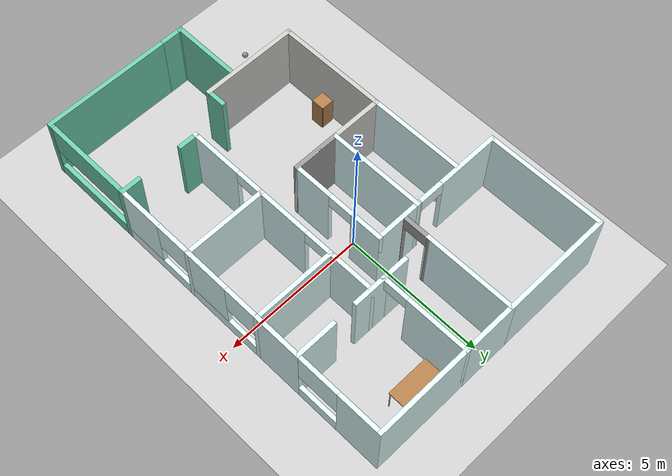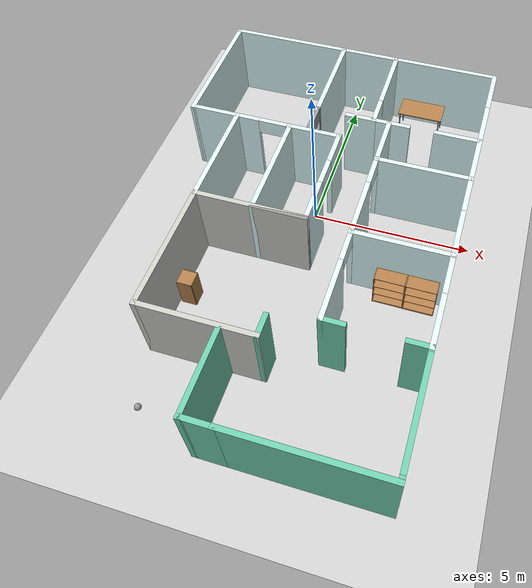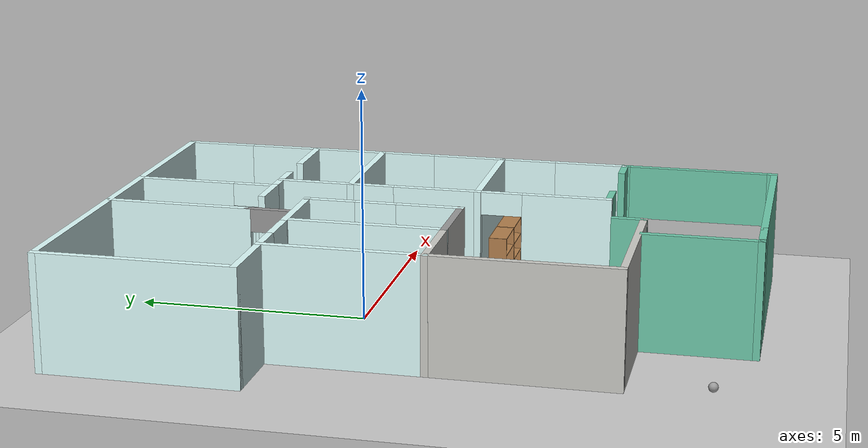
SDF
<sdf version="1.6">
 <world name="default">
  <light name="sun" type="directional">
   <pose>0 0 10 0 -0 0</pose>
   <diffuse>0.8 0.8 0.8 1</diffuse>
   <specular>0.2 0.2 0.2 1</specular>
   <attenuation>
    <range>1000</range>
    <constant>0.9</constant>
    <linear>0.01</linear>
    <quadratic>0.001</quadratic>
   </attenuation>
   <direction>-0.5 0.1 -0.9</direction>
  </light>
  <model name="ground_plane">
   <static>1</static>
   <link name="link">
    <collision name="collision">
     <geometry><plane><normal>0 0 1</normal><size>100 100</size></plane></geometry>
     <surface><friction><ode><mu>100</mu><mu2>50</mu2></ode></friction></surface>
    </collision>
    <visual name="visual">
     <cast_shadows>0</cast_shadows>
     <geometry><plane><normal>0 0 1</normal><size>100 100</size></plane></geometry>
     <material>
      <script><uri>file://media/materials/scripts/gazebo.material</uri><name>Gazebo/Grey</name></script>
     </material>
    </visual>
   </link>
  </model>
  <gravity>0 0 -9.8</gravity>
  <magnetic_field>6e-06 2.3e-05 -4.2e-05</magnetic_field>
  <atmosphere type="adiabatic"/>
  <physics name="default_physics" default="0" type="ode">
   <max_step_size>0.001</max_step_size>
   <real_time_factor>1</real_time_factor>
   <real_time_update_rate>1000</real_time_update_rate>
  </physics>
  <scene><ambient>0.4 0.4 0.4 1</ambient><background>0.7 0.7 0.7 1</background><shadows>1</shadows></scene>
  <spherical_coordinates>
   <surface_model>EARTH_WGS84</surface_model>
   <latitude_deg>0</latitude_deg>
   <longitude_deg>0</longitude_deg>
   <elevation>0</elevation>
   <heading_deg>0</heading_deg>
  </spherical_coordinates>
  <model name="Building">
   <pose>0.06239 -1.44031 0 0 -0 0</pose>
   <link name="Wall_1">
    <collision name="Wall_1_Collision">
     <geometry><box><size>3.5 0.15 2.5</size></box></geometry>
     <pose>0 0 1.25 0 -0 0</pose>
    </collision>
    <visual name="Wall_1_Visual">
     <pose>0 0 1.25 0 -0 0</pose>
     <geometry><box><size>3.5 0.15 2.5</size></box></geometry>
     <material>
      <script><uri>file://media/materials/scripts/gazebo.material</uri><name>Gazebo/Grey</name></script>
      <ambient>0.878431 1 0.996078 1</ambient>
     </material>
     <meta><layer>0</layer></meta>
    </visual>
    <pose>2.85 6.875 0 0 -0 0</pose>
   </link>
   <link name="Wall_10">
    <pose>-2.1 2.775 0 0 -0 0</pose>
    <visual name="Wall_10_Visual_0">
     <pose>-1.3425 0 1.25 0 -0 0</pose>
     <geometry><box><size>2.315 0.15 2.5</size></box></geometry>
     <material>
      <script><uri>file://media/materials/scripts/gazebo.material</uri><name>Gazebo/Grey</name></script>
      <ambient>0.878431 1 0.996078 1</ambient>
     </material>
     <meta><layer>0</layer></meta>
    </visual>
    <collision name="Wall_10_Collision_0">
     <geometry><box><size>2.315 0.15 2.5</size></box></geometry>
     <pose>-1.3425 0 1.25 0 -0 0</pose>
    </collision>
    <visual name="Wall_10_Visual_1">
     <pose>1.6075 0 1.25 0 -0 0</pose>
     <geometry><box><size>1.785 0.15 2.5</size></box></geometry>
     <material>
      <script><uri>file://media/materials/scripts/gazebo.material</uri><name>Gazebo/Grey</name></script>
      <ambient>0.878431 1 0.996078 1</ambient>
     </material>
     <meta><layer>0</layer></meta>
    </visual>
    <collision name="Wall_10_Collision_1">
     <geometry><box><size>1.785 0.15 2.5</size></box></geometry>
     <pose>1.6075 0 1.25 0 -0 0</pose>
    </collision>
    <visual name="Wall_10_Visual_2">
     <pose>0.265 0 2.25 0 -0 0</pose>
     <geometry><box><size>0.9 0.15 0.5</size></box></geometry>
     <material>
      <script><uri>file://media/materials/scripts/gazebo.material</uri><name>Gazebo/Grey</name></script>
      <ambient>0.878431 1 0.996078 1</ambient>
     </material>
     <meta><layer>0</layer></meta>
    </visual>
    <collision name="Wall_10_Collision_2">
     <geometry><box><size>0.9 0.15 0.5</size></box></geometry>
     <pose>0.265 0 2.25 0 -0 0</pose>
    </collision>
   </link>
   <link name="Wall_12">
    <collision name="Wall_12_Collision">
     <geometry><box><size>1.75 0.15 2.5</size></box></geometry>
     <pose>0 0 1.25 0 -0 0</pose>
    </collision>
    <visual name="Wall_12_Visual">
     <pose>0 0 1.25 0 -0 0</pose>
     <geometry><box><size>1.75 0.15 2.5</size></box></geometry>
     <material>
      <script><uri>file://media/materials/scripts/gazebo.material</uri><name>Gazebo/Grey</name></script>
      <ambient>0.878431 1 0.996078 1</ambient>
     </material>
     <meta><layer>0</layer></meta>
    </visual>
    <pose>4.525 2.975 0 0 0 -1.5708</pose>
   </link>
   <link name="Wall_16">
    <collision name="Wall_16_Collision">
     <geometry><box><size>3 0.15 2.5</size></box></geometry>
     <pose>0 0 1.25 0 -0 0</pose>
    </collision>
    <visual name="Wall_16_Visual">
     <pose>0 0 1.25 0 -0 0</pose>
     <geometry><box><size>3 0.15 2.5</size></box></geometry>
     <material>
      <script><uri>file://media/materials/scripts/gazebo.material</uri><name>Gazebo/Grey</name></script>
      <ambient>0.878431 1 0.996078 1</ambient>
     </material>
     <meta><layer>0</layer></meta>
    </visual>
    <pose>3.1 2.175 0 0 -0 3.14159</pose>
   </link>
   <link name="Wall_17">
    <collision name="Wall_17_Collision">
     <geometry><box><size>1.75 0.15 2.5</size></box></geometry>
     <pose>0 0 1.25 0 -0 0</pose>
    </collision>
    <visual name="Wall_17_Visual">
     <pose>0 0 1.25 0 -0 0</pose>
     <geometry><box><size>1.75 0.15 2.5</size></box></geometry>
     <material>
      <script><uri>file://media/materials/scripts/gazebo.material</uri><name>Gazebo/Grey</name></script>
      <ambient>0.878431 1 0.996078 1</ambient>
     </material>
     <meta><layer>0</layer></meta>
    </visual>
    <pose>1.675 2.975 0 0 -0 1.5708</pose>
   </link>
   <link name="Wall_19">
    <pose>4.525 0.75 0 0 0 -1.5708</pose>
    <visual name="Wall_19_Visual_0">
     <pose>-1.4225 0 1.25 0 -0 0</pose>
     <geometry><box><size>0.155 0.15 2.5</size></box></geometry>
     <material>
      <script><uri>file://media/materials/scripts/gazebo.material</uri><name>Gazebo/Grey</name></script>
      <ambient>0.878431 1 0.996078 1</ambient>
     </material>
     <meta><layer>0</layer></meta>
    </visual>
    <collision name="Wall_19_Collision_0">
     <geometry><box><size>0.155 0.15 2.5</size></box></geometry>
     <pose>-1.4225 0 1.25 0 -0 0</pose>
    </collision>
    <visual name="Wall_19_Visual_1">
     <pose>0.0775 0 0.25 0 -0 0</pose>
     <geometry><box><size>2.845 0.15 0.5</size></box></geometry>
     <material>
      <script><uri>file://media/materials/scripts/gazebo.material</uri><name>Gazebo/Grey</name></script>
      <ambient>0.878431 1 0.996078 1</ambient>
     </material>
     <meta><layer>0</layer></meta>
    </visual>
    <collision name="Wall_19_Collision_1">
     <geometry><box><size>2.845 0.15 0.5</size></box></geometry>
     <pose>0.0775 0 0.25 0 -0 0</pose>
    </collision>
    <visual name="Wall_19_Visual_2">
     <pose>0.6625 0 1.5 0 -0 0</pose>
     <geometry><box><size>1.675 0.15 2</size></box></geometry>
     <material>
      <script><uri>file://media/materials/scripts/gazebo.material</uri><name>Gazebo/Grey</name></script>
      <ambient>0.878431 1 0.996078 1</ambient>
     </material>
     <meta><layer>0</layer></meta>
    </visual>
    <collision name="Wall_19_Collision_2">
     <geometry><box><size>1.675 0.15 2</size></box></geometry>
     <pose>0.6625 0 1.5 0 -0 0</pose>
    </collision>
    <visual name="Wall_19_Visual_3">
     <pose>-0.76 0 1.9 0 -0 0</pose>
     <geometry><box><size>1.17 0.15 1.2</size></box></geometry>
     <material>
      <script><uri>file://media/materials/scripts/gazebo.material</uri><name>Gazebo/Grey</name></script>
      <ambient>0.878431 1 0.996078 1</ambient>
     </material>
     <meta><layer>0</layer></meta>
    </visual>
    <collision name="Wall_19_Collision_3">
     <geometry><box><size>1.17 0.15 1.2</size></box></geometry>
     <pose>-0.76 0 1.9 0 -0 0</pose>
    </collision>
   </link>
   <link name="Wall_2">
    <pose>4.525 5.325 0 0 0 -1.5708</pose>
    <visual name="Wall_2_Visual_0">
     <pose>-0.8175 0 1.25 0 -0 0</pose>
     <geometry><box><size>1.615 0.15 2.5</size></box></geometry>
     <material>
      <script><uri>file://media/materials/scripts/gazebo.material</uri><name>Gazebo/Grey</name></script>
      <ambient>0.878431 1 0.996078 1</ambient>
     </material>
     <meta><layer>0</layer></meta>
    </visual>
    <collision name="Wall_2_Collision_0">
     <geometry><box><size>1.615 0.15 2.5</size></box></geometry>
     <pose>-0.8175 0 1.25 0 -0 0</pose>
    </collision>
    <visual name="Wall_2_Visual_1">
     <pose>0.8075 0 0.25 0 -0 0</pose>
     <geometry><box><size>1.635 0.15 0.5</size></box></geometry>
     <material>
      <script><uri>file://media/materials/scripts/gazebo.material</uri><name>Gazebo/Grey</name></script>
      <ambient>0.878431 1 0.996078 1</ambient>
     </material>
     <meta><layer>0</layer></meta>
    </visual>
    <collision name="Wall_2_Collision_1">
     <geometry><box><size>1.635 0.15 0.5</size></box></geometry>
     <pose>0.8075 0 0.25 0 -0 0</pose>
    </collision>
    <visual name="Wall_2_Visual_2">
     <pose>1.5475 0 1.5 0 -0 0</pose>
     <geometry><box><size>0.155 0.15 2</size></box></geometry>
     <material>
      <script><uri>file://media/materials/scripts/gazebo.material</uri><name>Gazebo/Grey</name></script>
      <ambient>0.878431 1 0.996078 1</ambient>
     </material>
     <meta><layer>0</layer></meta>
    </visual>
    <collision name="Wall_2_Collision_2">
     <geometry><box><size>0.155 0.15 2</size></box></geometry>
     <pose>1.5475 0 1.5 0 -0 0</pose>
    </collision>
    <visual name="Wall_2_Visual_3">
     <pose>0.73 0 1.9 0 -0 0</pose>
     <geometry><box><size>1.48 0.15 1.2</size></box></geometry>
     <material>
      <script><uri>file://media/materials/scripts/gazebo.material</uri><name>Gazebo/Grey</name></script>
      <ambient>0.878431 1 0.996078 1</ambient>
     </material>
     <meta><layer>0</layer></meta>
    </visual>
    <collision name="Wall_2_Collision_3">
     <geometry><box><size>1.48 0.15 1.2</size></box></geometry>
     <pose>0.73 0 1.9 0 -0 0</pose>
    </collision>
   </link>
   <link name="Wall_20">
    <collision name="Wall_20_Collision">
     <geometry><box><size>3 0.15 2.5</size></box></geometry>
     <pose>0 0 1.25 0 -0 0</pose>
    </collision>
    <visual name="Wall_20_Visual">
     <pose>0 0 1.25 0 -0 0</pose>
     <geometry><box><size>3 0.15 2.5</size></box></geometry>
     <material>
      <script><uri>file://media/materials/scripts/gazebo.material</uri><name>Gazebo/Grey</name></script>
      <ambient>0.878431 1 0.996078 1</ambient>
     </material>
     <meta><layer>0</layer></meta>
    </visual>
    <pose>3.1 -0.675 0 0 -0 3.14159</pose>
   </link>
   <link name="Wall_21">
    <pose>1.675 0.75 0 0 -0 1.5708</pose>
    <visual name="Wall_21_Visual_0">
     <pose>-0.5275 0 1.25 0 -0 0</pose>
     <geometry><box><size>1.945 0.15 2.5</size></box></geometry>
     <material>
      <script><uri>file://media/materials/scripts/gazebo.material</uri><name>Gazebo/Grey</name></script>
      <ambient>0.878431 1 0.996078 1</ambient>
     </material>
     <meta><layer>0</layer></meta>
    </visual>
    <collision name="Wall_21_Collision_0">
     <geometry><box><size>1.945 0.15 2.5</size></box></geometry>
     <pose>-0.5275 0 1.25 0 -0 0</pose>
    </collision>
    <visual name="Wall_21_Visual_1">
     <pose>1.4225 0 1.25 0 -0 0</pose>
     <geometry><box><size>0.155 0.15 2.5</size></box></geometry>
     <material>
      <script><uri>file://media/materials/scripts/gazebo.material</uri><name>Gazebo/Grey</name></script>
      <ambient>0.878431 1 0.996078 1</ambient>
     </material>
     <meta><layer>0</layer></meta>
    </visual>
    <collision name="Wall_21_Collision_1">
     <geometry><box><size>0.155 0.15 2.5</size></box></geometry>
     <pose>1.4225 0 1.25 0 -0 0</pose>
    </collision>
    <visual name="Wall_21_Visual_2">
     <pose>0.895 0 2.25 0 -0 0</pose>
     <geometry><box><size>0.9 0.15 0.5</size></box></geometry>
     <material>
      <script><uri>file://media/materials/scripts/gazebo.material</uri><name>Gazebo/Grey</name></script>
      <ambient>0.878431 1 0.996078 1</ambient>
     </material>
     <meta><layer>0</layer></meta>
    </visual>
    <collision name="Wall_21_Collision_2">
     <geometry><box><size>0.9 0.15 0.5</size></box></geometry>
     <pose>0.895 0 2.25 0 -0 0</pose>
    </collision>
   </link>
   <link name="Wall_23">
    <pose>0.325 1.1 0 0 0 -1.5708</pose>
    <visual name="Wall_23_Visual_0">
     <pose>-1.1775 0 1.25 0 -0 0</pose>
     <geometry><box><size>1.145 0.15 2.5</size></box></geometry>
     <material>
      <script><uri>file://media/materials/scripts/gazebo.material</uri><name>Gazebo/Grey</name></script>
      <ambient>0.878431 1 0.996078 1</ambient>
     </material>
     <meta><layer>0</layer></meta>
    </visual>
    <collision name="Wall_23_Collision_0">
     <geometry><box><size>1.145 0.15 2.5</size></box></geometry>
     <pose>-1.1775 0 1.25 0 -0 0</pose>
    </collision>
    <visual name="Wall_23_Visual_1">
     <pose>1.0225 0 1.25 0 -0 0</pose>
     <geometry><box><size>1.455 0.15 2.5</size></box></geometry>
     <material>
      <script><uri>file://media/materials/scripts/gazebo.material</uri><name>Gazebo/Grey</name></script>
      <ambient>0.878431 1 0.996078 1</ambient>
     </material>
     <meta><layer>0</layer></meta>
    </visual>
    <collision name="Wall_23_Collision_1">
     <geometry><box><size>1.455 0.15 2.5</size></box></geometry>
     <pose>1.0225 0 1.25 0 -0 0</pose>
    </collision>
    <visual name="Wall_23_Visual_2">
     <pose>-0.155 0 2.25 0 -0 0</pose>
     <geometry><box><size>0.9 0.15 0.5</size></box></geometry>
     <material>
      <script><uri>file://media/materials/scripts/gazebo.material</uri><name>Gazebo/Grey</name></script>
      <ambient>0.878431 1 0.996078 1</ambient>
     </material>
     <meta><layer>0</layer></meta>
    </visual>
    <collision name="Wall_23_Collision_2">
     <geometry><box><size>0.9 0.15 0.5</size></box></geometry>
     <pose>-0.155 0 2.25 0 -0 0</pose>
    </collision>
   </link>
   <link name="Wall_25">
    <pose>4.525 -2.1 0 0 0 -1.5708</pose>
    <visual name="Wall_25_Visual_0">
     <pose>-1.4225 0 1.25 0 -0 0</pose>
     <geometry><box><size>0.155 0.15 2.5</size></box></geometry>
     <material>
      <script><uri>file://media/materials/scripts/gazebo.material</uri><name>Gazebo/Grey</name></script>
      <ambient>0.878431 1 0.996078 1</ambient>
     </material>
     <meta><layer>0</layer></meta>
    </visual>
    <collision name="Wall_25_Collision_0">
     <geometry><box><size>0.155 0.15 2.5</size></box></geometry>
     <pose>-1.4225 0 1.25 0 -0 0</pose>
    </collision>
    <visual name="Wall_25_Visual_1">
     <pose>0.0775 0 0.25 0 -0 0</pose>
     <geometry><box><size>2.845 0.15 0.5</size></box></geometry>
     <material>
      <script><uri>file://media/materials/scripts/gazebo.material</uri><name>Gazebo/Grey</name></script>
      <ambient>0.878431 1 0.996078 1</ambient>
     </material>
     <meta><layer>0</layer></meta>
    </visual>
    <collision name="Wall_25_Collision_1">
     <geometry><box><size>2.845 0.15 0.5</size></box></geometry>
     <pose>0.0775 0 0.25 0 -0 0</pose>
    </collision>
    <visual name="Wall_25_Visual_2">
     <pose>0.6625 0 1.5 0 -0 0</pose>
     <geometry><box><size>1.675 0.15 2</size></box></geometry>
     <material>
      <script><uri>file://media/materials/scripts/gazebo.material</uri><name>Gazebo/Grey</name></script>
      <ambient>0.878431 1 0.996078 1</ambient>
     </material>
     <meta><layer>0</layer></meta>
    </visual>
    <collision name="Wall_25_Collision_2">
     <geometry><box><size>1.675 0.15 2</size></box></geometry>
     <pose>0.6625 0 1.5 0 -0 0</pose>
    </collision>
    <visual name="Wall_25_Visual_3">
     <pose>-0.76 0 1.9 0 -0 0</pose>
     <geometry><box><size>1.17 0.15 1.2</size></box></geometry>
     <material>
      <script><uri>file://media/materials/scripts/gazebo.material</uri><name>Gazebo/Grey</name></script>
      <ambient>0.878431 1 0.996078 1</ambient>
     </material>
     <meta><layer>0</layer></meta>
    </visual>
    <collision name="Wall_25_Collision_3">
     <geometry><box><size>1.17 0.15 1.2</size></box></geometry>
     <pose>-0.76 0 1.9 0 -0 0</pose>
    </collision>
   </link>
   <link name="Wall_26">
    <collision name="Wall_26_Collision">
     <geometry><box><size>0.75 0.15 2.5</size></box></geometry>
     <pose>0 0 1.25 0 -0 0</pose>
    </collision>
    <visual name="Wall_26_Visual">
     <pose>0 0 1.25 0 -0 0</pose>
     <geometry><box><size>0.75 0.15 2.5</size></box></geometry>
     <material>
      <script><uri>file://media/materials/scripts/gazebo.material</uri><name>Gazebo/Grey</name></script>
      <ambient>0.435294 0.796078 0.67451 1</ambient>
     </material>
     <meta><layer>0</layer></meta>
    </visual>
    <pose>4.225 -3.525 0 0 -0 3.14159</pose>
   </link>
   <link name="Wall_28">
    <pose>1.675 -2.1 0 0 0 -1.5708</pose>
    <visual name="Wall_28_Visual_0">
     <pose>-1.4225 0 1.25 0 -0 0</pose>
     <geometry><box><size>0.155 0.15 2.5</size></box></geometry>
     <material>
      <script><uri>file://media/materials/scripts/gazebo.material</uri><name>Gazebo/Grey</name></script>
      <ambient>0.878431 1 0.996078 1</ambient>
     </material>
     <meta><layer>0</layer></meta>
    </visual>
    <collision name="Wall_28_Collision_0">
     <geometry><box><size>0.155 0.15 2.5</size></box></geometry>
     <pose>-1.4225 0 1.25 0 -0 0</pose>
    </collision>
    <visual name="Wall_28_Visual_1">
     <pose>0.5275 0 1.25 0 -0 0</pose>
     <geometry><box><size>1.945 0.15 2.5</size></box></geometry>
     <material>
      <script><uri>file://media/materials/scripts/gazebo.material</uri><name>Gazebo/Grey</name></script>
      <ambient>0.878431 1 0.996078 1</ambient>
     </material>
     <meta><layer>0</layer></meta>
    </visual>
    <collision name="Wall_28_Collision_1">
     <geometry><box><size>1.945 0.15 2.5</size></box></geometry>
     <pose>0.5275 0 1.25 0 -0 0</pose>
    </collision>
    <visual name="Wall_28_Visual_2">
     <pose>-0.895 0 2.25 0 -0 0</pose>
     <geometry><box><size>0.9 0.15 0.5</size></box></geometry>
     <material>
      <script><uri>file://media/materials/scripts/gazebo.material</uri><name>Gazebo/Grey</name></script>
      <ambient>0.878431 1 0.996078 1</ambient>
     </material>
     <meta><layer>0</layer></meta>
    </visual>
    <collision name="Wall_28_Collision_2">
     <geometry><box><size>0.9 0.15 0.5</size></box></geometry>
     <pose>-0.895 0 2.25 0 -0 0</pose>
    </collision>
   </link>
   <link name="Wall_29">
    <collision name="Wall_29_Collision">
     <geometry><box><size>0.75 0.15 2.5</size></box></geometry>
     <pose>0 0 1.25 0 -0 0</pose>
    </collision>
    <visual name="Wall_29_Visual">
     <pose>0 0 1.25 0 -0 0</pose>
     <geometry><box><size>0.75 0.15 2.5</size></box></geometry>
     <material>
      <script><uri>file://media/materials/scripts/gazebo.material</uri><name>Gazebo/Grey</name></script>
      <ambient>0.435294 0.796078 0.67451 1</ambient>
     </material>
     <meta><layer>0</layer></meta>
    </visual>
    <pose>1.975 -3.525 0 0 -0 0</pose>
   </link>
   <link name="Wall_31">
    <collision name="Wall_31_Collision">
     <geometry><box><size>1.73 0.15 2.5</size></box></geometry>
     <pose>0 0 1.25 0 -0 0</pose>
    </collision>
    <visual name="Wall_31_Visual">
     <pose>0 0 1.25 0 -0 0</pose>
     <geometry><box><size>1.73 0.15 2.5</size></box></geometry>
     <material>
      <script><uri>file://media/materials/scripts/gazebo.material</uri><name>Gazebo/Grey</name></script>
      <ambient>1 1 1 1</ambient>
     </material>
     <meta><layer>0</layer></meta>
    </visual>
    <pose>-0.465 -0.575 0 0 -0 3.14159</pose>
   </link>
   <link name="Wall_32">
    <collision name="Wall_32_Collision">
     <geometry><box><size>3.5 0.15 2.5</size></box></geometry>
     <pose>0 0 1.25 0 -0 0</pose>
    </collision>
    <visual name="Wall_32_Visual">
     <pose>0 0 1.25 0 -0 0</pose>
     <geometry><box><size>3.5 0.15 2.5</size></box></geometry>
     <material>
      <script><uri>file://media/materials/scripts/gazebo.material</uri><name>Gazebo/Grey</name></script>
      <ambient>0.878431 1 0.996078 1</ambient>
     </material>
     <meta><layer>0</layer></meta>
    </visual>
    <pose>-1.265 1.1 0 0 -0 1.5708</pose>
   </link>
   <link name="Wall_34">
    <collision name="Wall_34_Collision">
     <geometry><box><size>3.5 0.15 2.5</size></box></geometry>
     <pose>0 0 1.25 0 -0 0</pose>
    </collision>
    <visual name="Wall_34_Visual">
     <pose>0 0 1.25 0 -0 0</pose>
     <geometry><box><size>3.5 0.15 2.5</size></box></geometry>
     <material>
      <script><uri>file://media/materials/scripts/gazebo.material</uri><name>Gazebo/CeilingTiled</name></script>
      <ambient>0.435294 0.796078 0.67451 1</ambient>
     </material>
     <meta><layer>0</layer></meta>
    </visual>
    <pose>-1.35 -0.575 0 0 -0 3.14159</pose>
   </link>
   <link name="Wall_36">
    <collision name="Wall_36_Collision">
     <geometry><box><size>4 0.15 2.5</size></box></geometry>
     <pose>0 0 1.25 0 -0 0</pose>
    </collision>
    <visual name="Wall_36_Visual">
     <pose>0 0 1.25 0 -0 0</pose>
     <geometry><box><size>4 0.15 2.5</size></box></geometry>
     <material>
      <script><uri>file://media/materials/scripts/gazebo.material</uri><name>Gazebo/CeilingTiled</name></script>
      <ambient>0.435294 0.796078 0.67451 1</ambient>
     </material>
     <meta><layer>0</layer></meta>
    </visual>
    <pose>-3.025 -2.5 0 0 0 -1.5708</pose>
   </link>
   <link name="Wall_37">
    <collision name="Wall_37_Collision">
     <geometry><box><size>3.5 0.15 2.5</size></box></geometry>
     <pose>0 0 1.25 0 -0 0</pose>
    </collision>
    <visual name="Wall_37_Visual">
     <pose>0 0 1.25 0 -0 0</pose>
     <geometry><box><size>3.5 0.15 2.5</size></box></geometry>
     <material>
      <script><uri>file://media/materials/scripts/gazebo.material</uri><name>Gazebo/CeilingTiled</name></script>
      <ambient>0.435294 0.796078 0.67451 1</ambient>
     </material>
     <meta><layer>0</layer></meta>
    </visual>
    <pose>-1.35 -4.425 0 0 -0 0</pose>
   </link>
   <link name="Wall_38">
    <collision name="Wall_38_Collision">
     <geometry><box><size>0.75 0.15 2.5</size></box></geometry>
     <pose>0 0 1.25 0 -0 0</pose>
    </collision>
    <visual name="Wall_38_Visual">
     <pose>0 0 1.25 0 -0 0</pose>
     <geometry><box><size>0.75 0.15 2.5</size></box></geometry>
     <material>
      <script><uri>file://media/materials/scripts/gazebo.material</uri><name>Gazebo/Grey</name></script>
      <ambient>0.435294 0.796078 0.67451 1</ambient>
     </material>
     <meta><layer>0</layer></meta>
    </visual>
    <pose>0.325 -4.125 0 0 -0 1.5708</pose>
   </link>
   <link name="Wall_4">
    <pose>1.175 5.325 0 0 -0 1.5708</pose>
    <visual name="Wall_4_Visual_0">
     <pose>-1.5775 0 1.25 0 -0 0</pose>
     <geometry><box><size>0.095 0.15 2.5</size></box></geometry>
     <material>
      <script><uri>file://media/materials/scripts/gazebo.material</uri><name>Gazebo/Grey</name></script>
      <ambient>0.878431 1 0.996078 1</ambient>
     </material>
     <meta><layer>0</layer></meta>
    </visual>
    <collision name="Wall_4_Collision_0">
     <geometry><box><size>0.095 0.15 2.5</size></box></geometry>
     <pose>-1.5775 0 1.25 0 -0 0</pose>
    </collision>
    <visual name="Wall_4_Visual_1">
     <pose>0.4975 0 1.25 0 -0 0</pose>
     <geometry><box><size>2.255 0.15 2.5</size></box></geometry>
     <material>
      <script><uri>file://media/materials/scripts/gazebo.material</uri><name>Gazebo/Grey</name></script>
      <ambient>0.878431 1 0.996078 1</ambient>
     </material>
     <meta><layer>0</layer></meta>
    </visual>
    <collision name="Wall_4_Collision_1">
     <geometry><box><size>2.255 0.15 2.5</size></box></geometry>
     <pose>0.4975 0 1.25 0 -0 0</pose>
    </collision>
    <visual name="Wall_4_Visual_2">
     <pose>-1.08 0 2.25 0 -0 0</pose>
     <geometry><box><size>0.9 0.15 0.5</size></box></geometry>
     <material>
      <script><uri>file://media/materials/scripts/gazebo.material</uri><name>Gazebo/Grey</name></script>
      <ambient>0.878431 1 0.996078 1</ambient>
     </material>
     <meta><layer>0</layer></meta>
    </visual>
    <collision name="Wall_4_Collision_2">
     <geometry><box><size>0.9 0.15 0.5</size></box></geometry>
     <pose>-1.08 0 2.25 0 -0 0</pose>
    </collision>
   </link>
   <link name="Wall_42">
    <pose>4.525 -5.2 0 0 0 -1.5708</pose>
    <visual name="Wall_42_Visual_0">
     <pose>-1.6525 0 1.25 0 -0 0</pose>
     <geometry><box><size>0.195 0.15 2.5</size></box></geometry>
     <material>
      <script><uri>file://media/materials/scripts/gazebo.material</uri><name>Gazebo/Grey</name></script>
      <ambient>0.435294 0.796078 0.67451 1</ambient>
     </material>
     <meta><layer>0</layer></meta>
    </visual>
    <collision name="Wall_42_Collision_0">
     <geometry><box><size>0.195 0.15 2.5</size></box></geometry>
     <pose>-1.6525 0 1.25 0 -0 0</pose>
    </collision>
    <visual name="Wall_42_Visual_1">
     <pose>0.0975 0 0.25 0 -0 0</pose>
     <geometry><box><size>3.305 0.15 0.5</size></box></geometry>
     <material>
      <script><uri>file://media/materials/scripts/gazebo.material</uri><name>Gazebo/Grey</name></script>
      <ambient>0.435294 0.796078 0.67451 1</ambient>
     </material>
     <meta><layer>0</layer></meta>
    </visual>
    <collision name="Wall_42_Collision_1">
     <geometry><box><size>3.305 0.15 0.5</size></box></geometry>
     <pose>0.0975 0 0.25 0 -0 0</pose>
    </collision>
    <visual name="Wall_42_Visual_2">
     <pose>1.6325 0 1.5 0 -0 0</pose>
     <geometry><box><size>0.235 0.15 2</size></box></geometry>
     <material>
      <script><uri>file://media/materials/scripts/gazebo.material</uri><name>Gazebo/Grey</name></script>
      <ambient>0.435294 0.796078 0.67451 1</ambient>
     </material>
     <meta><layer>0</layer></meta>
    </visual>
    <collision name="Wall_42_Collision_2">
     <geometry><box><size>0.235 0.15 2</size></box></geometry>
     <pose>1.6325 0 1.5 0 -0 0</pose>
    </collision>
    <visual name="Wall_42_Visual_3">
     <pose>-0.02 0 1.9 0 -0 0</pose>
     <geometry><box><size>3.07 0.15 1.2</size></box></geometry>
     <material>
      <script><uri>file://media/materials/scripts/gazebo.material</uri><name>Gazebo/Grey</name></script>
      <ambient>0.435294 0.796078 0.67451 1</ambient>
     </material>
     <meta><layer>0</layer></meta>
    </visual>
    <collision name="Wall_42_Collision_3">
     <geometry><box><size>3.07 0.15 1.2</size></box></geometry>
     <pose>-0.02 0 1.9 0 -0 0</pose>
    </collision>
   </link>
   <link name="Wall_43">
    <collision name="Wall_43_Collision">
     <geometry><box><size>4.5 0.15 2.5</size></box></geometry>
     <pose>0 0 1.25 0 -0 0</pose>
    </collision>
    <visual name="Wall_43_Visual">
     <pose>0 0 1.25 0 -0 0</pose>
     <geometry><box><size>4.5 0.15 2.5</size></box></geometry>
     <material>
      <script><uri>file://media/materials/scripts/gazebo.material</uri><name>Gazebo/Grey</name></script>
      <ambient>0.435294 0.796078 0.67451 1</ambient>
     </material>
     <meta><layer>0</layer></meta>
    </visual>
    <pose>2.35 -6.875 0 0 -0 3.14159</pose>
   </link>
   <link name="Wall_45">
    <pose>-0.25 -6.875 0 0 -0 3.14159</pose>
    <visual name="Wall_45_Visual_0">
     <pose>0 0 1.25 0 -0 0</pose>
     <geometry><box><size>1 0.15 2.5</size></box></geometry>
     <material>
      <script><uri>file://media/materials/scripts/gazebo.material</uri><name>Gazebo/Grey</name></script>
      <ambient>0.435294 0.796078 0.67451 1</ambient>
     </material>
     <meta><layer>0</layer></meta>
    </visual>
    <collision name="Wall_45_Collision_0">
     <geometry><box><size>1 0.15 2.5</size></box></geometry>
     <pose>0 0 1.25 0 -0 0</pose>
    </collision>
    <visual name="Wall_45_Visual_1">
     <pose>0.4025 0 1.25 0 -0 0</pose>
     <geometry><box><size>0.195 0.15 2.5</size></box></geometry>
     <material>
      <script><uri>file://media/materials/scripts/gazebo.material</uri><name>Gazebo/Grey</name></script>
      <ambient>0.435294 0.796078 0.67451 1</ambient>
     </material>
     <meta><layer>0</layer></meta>
    </visual>
    <collision name="Wall_45_Collision_1">
     <geometry><box><size>0.195 0.15 2.5</size></box></geometry>
     <pose>0.4025 0 1.25 0 -0 0</pose>
    </collision>
   </link>
   <link name="Wall_46">
    <collision name="Wall_46_Collision">
     <geometry><box><size>2.5 0.15 2.5</size></box></geometry>
     <pose>0 0 1.25 0 -0 0</pose>
    </collision>
    <visual name="Wall_46_Visual">
     <pose>0 0 1.25 0 -0 0</pose>
     <geometry><box><size>2.5 0.15 2.5</size></box></geometry>
     <material>
      <script><uri>file://media/materials/scripts/gazebo.material</uri><name>Gazebo/Grey</name></script>
      <ambient>0.435294 0.796078 0.67451 1</ambient>
     </material>
     <meta><layer>0</layer></meta>
    </visual>
    <pose>-0.675 -5.7 0 0 -0 1.5708</pose>
   </link>
   <link name="Wall_48">
    <pose>-0.675 3.35 0 0 0 -1.5708</pose>
    <visual name="Wall_48_Visual_0">
     <pose>-0.4525 0 1.25 0 -0 0</pose>
     <geometry><box><size>0.095 0.15 2.5</size></box></geometry>
     <material>
      <script><uri>file://media/materials/scripts/gazebo.material</uri><name>Gazebo/Grey</name></script>
      <ambient>1 1 1 1</ambient>
     </material>
     <meta><layer>0</layer></meta>
    </visual>
    <collision name="Wall_48_Collision_0">
     <geometry><box><size>0.095 0.15 2.5</size></box></geometry>
     <pose>-0.4525 0 1.25 0 -0 0</pose>
    </collision>
    <visual name="Wall_48_Visual_1">
     <pose>0.4975 0 1.25 0 -0 0</pose>
     <geometry><box><size>0.005 0.15 2.5</size></box></geometry>
     <material>
      <script><uri>file://media/materials/scripts/gazebo.material</uri><name>Gazebo/Grey</name></script>
      <ambient>1 1 1 1</ambient>
     </material>
     <meta><layer>0</layer></meta>
    </visual>
    <collision name="Wall_48_Collision_1">
     <geometry><box><size>0.005 0.15 2.5</size></box></geometry>
     <pose>0.4975 0 1.25 0 -0 0</pose>
    </collision>
    <visual name="Wall_48_Visual_2">
     <pose>0.045 0 2.25 0 -0 0</pose>
     <geometry><box><size>0.9 0.15 0.5</size></box></geometry>
     <material>
      <script><uri>file://media/materials/scripts/gazebo.material</uri><name>Gazebo/Grey</name></script>
      <ambient>1 1 1 1</ambient>
     </material>
     <meta><layer>0</layer></meta>
    </visual>
    <collision name="Wall_48_Collision_2">
     <geometry><box><size>0.9 0.15 0.5</size></box></geometry>
     <pose>0.045 0 2.25 0 -0 0</pose>
    </collision>
   </link>
   <link name="Wall_5">
    <collision name="Wall_5_Collision">
     <geometry><box><size>2 0.15 2.5</size></box></geometry>
     <pose>0 0 1.25 0 -0 0</pose>
    </collision>
    <visual name="Wall_5_Visual">
     <pose>0 0 1.25 0 -0 0</pose>
     <geometry><box><size>2 0.15 2.5</size></box></geometry>
     <material>
      <script><uri>file://media/materials/scripts/gazebo.material</uri><name>Gazebo/Grey</name></script>
      <ambient>0.878431 1 0.996078 1</ambient>
     </material>
     <meta><layer>0</layer></meta>
    </visual>
    <pose>0.25 6.875 0 0 -0 3.14159</pose>
   </link>
   <link name="Wall_50">
    <collision name="Wall_50_Collision">
     <geometry><box><size>1 0.15 2.5</size></box></geometry>
     <pose>0 0 1.25 0 -0 0</pose>
    </collision>
    <visual name="Wall_50_Visual">
     <pose>0 0 1.25 0 -0 0</pose>
     <geometry><box><size>1 0.15 2.5</size></box></geometry>
     <material>
      <script><uri>file://media/materials/scripts/gazebo.material</uri><name>Gazebo/Grey</name></script>
      <ambient>0.878431 1 0.996078 1</ambient>
     </material>
     <meta><layer>0</layer></meta>
    </visual>
    <pose>0.75 3.775 0 0 -0 3.14159</pose>
   </link>
   <link name="Wall_52">
    <collision name="Wall_52_Collision">
     <geometry><box><size>3.5 0.15 2.5</size></box></geometry>
     <pose>0 0 1.25 0 -0 0</pose>
    </collision>
    <visual name="Wall_52_Visual">
     <pose>0 0 1.25 0 -0 0</pose>
     <geometry><box><size>3.5 0.15 2.5</size></box></geometry>
     <material>
      <script><uri>file://media/materials/scripts/gazebo.material</uri><name>Gazebo/Grey</name></script>
      <ambient>0.878431 1 0.996078 1</ambient>
     </material>
     <meta><layer>0</layer></meta>
    </visual>
    <pose>-3.025 1.1 0 0 -0 1.5708</pose>
   </link>
   <link name="Wall_54">
    <collision name="Wall_54_Collision">
     <geometry><box><size>1.25 0.15 2.5</size></box></geometry>
     <pose>0 0 1.25 0 -0 0</pose>
    </collision>
    <visual name="Wall_54_Visual">
     <pose>0 0 1.25 0 -0 0</pose>
     <geometry><box><size>1.25 0.15 2.5</size></box></geometry>
     <material>
      <script><uri>file://media/materials/scripts/gazebo.material</uri><name>Gazebo/Grey</name></script>
      <ambient>0.878431 1 0.996078 1</ambient>
     </material>
     <meta><layer>0</layer></meta>
    </visual>
    <pose>1.725 3.775 0 0 -0 0</pose>
   </link>
   <link name="Wall_56">
    <collision name="Wall_56_Collision">
     <geometry><box><size>1.5 0.15 2.5</size></box></geometry>
     <pose>0 0 1.25 0 -0 0</pose>
    </collision>
    <visual name="Wall_56_Visual">
     <pose>0 0 1.25 0 -0 0</pose>
     <geometry><box><size>1.5 0.15 2.5</size></box></geometry>
     <material>
      <script><uri>file://media/materials/scripts/gazebo.material</uri><name>Gazebo/Grey</name></script>
      <ambient>0.878431 1 0.996078 1</ambient>
     </material>
     <meta><layer>0</layer></meta>
    </visual>
    <pose>3.85 3.775 0 0 -0 3.14159</pose>
   </link>
   <link name="Wall_6">
    <collision name="Wall_6_Collision">
     <geometry><box><size>3.25 0.15 2.5</size></box></geometry>
     <pose>0 0 1.25 0 -0 0</pose>
    </collision>
    <visual name="Wall_6_Visual">
     <pose>0 0 1.25 0 -0 0</pose>
     <geometry><box><size>3.25 0.15 2.5</size></box></geometry>
     <material>
      <script><uri>file://media/materials/scripts/gazebo.material</uri><name>Gazebo/Grey</name></script>
      <ambient>0.878431 1 0.996078 1</ambient>
     </material>
     <meta><layer>0</layer></meta>
    </visual>
    <pose>-0.675 5.325 0 0 0 -1.5708</pose>
   </link>
   <link name="Wall_8">
    <collision name="Wall_8_Collision">
     <geometry><box><size>4 0.15 2.5</size></box></geometry>
     <pose>0 0 1.25 0 -0 0</pose>
    </collision>
    <visual name="Wall_8_Visual">
     <pose>0 0 1.25 0 -0 0</pose>
     <geometry><box><size>4 0.15 2.5</size></box></geometry>
     <material>
      <script><uri>file://media/materials/scripts/gazebo.material</uri><name>Gazebo/Grey</name></script>
      <ambient>0.878431 1 0.996078 1</ambient>
     </material>
     <meta><layer>0</layer></meta>
    </visual>
    <pose>-2.6 6.875 0 0 -0 3.14159</pose>
   </link>
   <link name="Wall_9">
    <collision name="Wall_9_Collision">
     <geometry><box><size>4.25 0.15 2.5</size></box></geometry>
     <pose>0 0 1.25 0 -0 0</pose>
    </collision>
    <visual name="Wall_9_Visual">
     <pose>0 0 1.25 0 -0 0</pose>
     <geometry><box><size>4.25 0.15 2.5</size></box></geometry>
     <material>
      <script><uri>file://media/materials/scripts/gazebo.material</uri><name>Gazebo/Grey</name></script>
      <ambient>0.878431 1 0.996078 1</ambient>
     </material>
     <meta><layer>0</layer></meta>
    </visual>
    <pose>-4.525 4.825 0 0 0 -1.5708</pose>
   </link>
   <static>1</static>
  </model>
  <model name="table">
   <static>1</static>
   <link name="link">
    <collision name="surface">
     <pose>0 0 1 0 -0 0</pose>
     <geometry><box><size>1.5 0.8 0.03</size></box></geometry>
     <surface><friction><ode><mu>0.6</mu><mu2>0.6</mu2></ode></friction></surface>
    </collision>
    <visual name="visual1">
     <pose>0 0 1 0 -0 0</pose>
     <geometry><box><size>1.5 0.8 0.03</size></box></geometry>
     <material>
      <script><uri>file://media/materials/scripts/gazebo.material</uri><name>Gazebo/Wood</name></script>
     </material>
    </visual>
    <collision name="front_left_leg">
     <pose>0.68 0.38 0.5 0 -0 0</pose>
     <geometry><cylinder><radius>0.02</radius><length>1</length></cylinder></geometry>
    </collision>
    <visual name="front_left_leg">
     <pose>0.68 0.38 0.5 0 -0 0</pose>
     <geometry><cylinder><radius>0.02</radius><length>1</length></cylinder></geometry>
     <material>
      <script><uri>file://media/materials/scripts/gazebo.material</uri><name>Gazebo/Grey</name></script>
     </material>
    </visual>
    <collision name="front_right_leg">
     <pose>0.68 -0.38 0.5 0 -0 0</pose>
     <geometry><cylinder><radius>0.02</radius><length>1</length></cylinder></geometry>
    </collision>
    <visual name="front_right_leg">
     <pose>0.68 -0.38 0.5 0 -0 0</pose>
     <geometry><cylinder><radius>0.02</radius><length>1</length></cylinder></geometry>
     <material>
      <script><uri>file://media/materials/scripts/gazebo.material</uri><name>Gazebo/Grey</name></script>
     </material>
    </visual>
    <collision name="back_right_leg">
     <pose>-0.68 -0.38 0.5 0 -0 0</pose>
     <geometry><cylinder><radius>0.02</radius><length>1</length></cylinder></geometry>
    </collision>
    <visual name="back_right_leg">
     <pose>-0.68 -0.38 0.5 0 -0 0</pose>
     <geometry><cylinder><radius>0.02</radius><length>1</length></cylinder></geometry>
     <material>
      <script><uri>file://media/materials/scripts/gazebo.material</uri><name>Gazebo/Grey</name></script>
     </material>
    </visual>
    <collision name="back_left_leg">
     <pose>-0.68 0.38 0.5 0 -0 0</pose>
     <geometry><cylinder><radius>0.02</radius><length>1</length></cylinder></geometry>
    </collision>
    <visual name="back_left_leg">
     <pose>-0.68 0.38 0.5 0 -0 0</pose>
     <geometry><cylinder><radius>0.02</radius><length>1</length></cylinder></geometry>
     <material>
      <script><uri>file://media/materials/scripts/gazebo.material</uri><name>Gazebo/Grey</name></script>
     </material>
    </visual>
   </link>
   <pose>2.39815 4.82979 0 0 -0 0</pose>
  </model>
  <model name="bookshelf">
   <static>1</static>
   <link name="link">
    <inertial><mass>1</mass></inertial>
    <collision name="back">
     <pose>0 0.005 0.6 0 -0 0</pose>
     <geometry><box><size>0.9 0.01 1.2</size></box></geometry>
    </collision>
    <visual name="visual1">
     <pose>0 0.005 0.6 0 -0 0</pose>
     <geometry><box><size>0.9 0.01 1.2</size></box></geometry>
     <material>
      <script><uri>file://media/materials/scripts/gazebo.material</uri><name>Gazebo/Wood</name></script>
     </material>
    </visual>
    <collision name="left_side">
     <pose>0.45 -0.195 0.6 0 -0 0</pose>
     <geometry><box><size>0.02 0.4 1.2</size></box></geometry>
    </collision>
    <visual name="visual2">
     <pose>0.45 -0.195 0.6 0 -0 0</pose>
     <geometry><box><size>0.02 0.4 1.2</size></box></geometry>
     <material>
      <script><uri>file://media/materials/scripts/gazebo.material</uri><name>Gazebo/Wood</name></script>
     </material>
    </visual>
    <collision name="right_side">
     <pose>-0.45 -0.195 0.6 0 -0 0</pose>
     <geometry><box><size>0.02 0.4 1.2</size></box></geometry>
    </collision>
    <visual name="visual3">
     <pose>-0.45 -0.195 0.6 0 -0 0</pose>
     <geometry><box><size>0.02 0.4 1.2</size></box></geometry>
     <material>
      <script><uri>file://media/materials/scripts/gazebo.material</uri><name>Gazebo/Wood</name></script>
     </material>
    </visual>
    <collision name="bottom">
     <pose>0 -0.195 0.03 0 -0 0</pose>
     <geometry><box><size>0.88 0.4 0.06</size></box></geometry>
    </collision>
    <visual name="visual4">
     <pose>0 -0.195 0.03 0 -0 0</pose>
     <geometry><box><size>0.88 0.4 0.06</size></box></geometry>
     <material>
      <script><uri>file://media/materials/scripts/gazebo.material</uri><name>Gazebo/Wood</name></script>
     </material>
    </visual>
    <collision name="top">
     <pose>0 -0.195 1.19 0 -0 0</pose>
     <geometry><box><size>0.88 0.4 0.02</size></box></geometry>
    </collision>
    <visual name="visual5">
     <pose>0 -0.195 1.19 0 -0 0</pose>
     <geometry><box><size>0.88 0.4 0.02</size></box></geometry>
     <material>
      <script><uri>file://media/materials/scripts/gazebo.material</uri><name>Gazebo/Wood</name></script>
     </material>
    </visual>
    <collision name="low_shelf">
     <pose>0 -0.195 0.43 0 -0 0</pose>
     <geometry><box><size>0.88 0.4 0.02</size></box></geometry>
    </collision>
    <visual name="visual6">
     <pose>0 -0.195 0.43 0 -0 0</pose>
     <geometry><box><size>0.88 0.4 0.02</size></box></geometry>
     <material>
      <script><uri>file://media/materials/scripts/gazebo.material</uri><name>Gazebo/Wood</name></script>
     </material>
    </visual>
    <collision name="high_shelf">
     <pose>0 -0.195 0.8 0 -0 0</pose>
     <geometry><box><size>0.88 0.4 0.02</size></box></geometry>
    </collision>
    <visual name="visual7">
     <pose>0 -0.195 0.8 0 -0 0</pose>
     <geometry><box><size>0.88 0.4 0.02</size></box></geometry>
     <material>
      <script><uri>file://media/materials/scripts/gazebo.material</uri><name>Gazebo/Wood</name></script>
     </material>
    </visual>
   </link>
   <pose>3.02057 -2.21523 0 0 -0 0</pose>
  </model>
  <model name="bookshelf_0">
   <static>1</static>
   <link name="link">
    <inertial><mass>1</mass></inertial>
    <collision name="back">
     <pose>0 0.005 0.6 0 -0 0</pose>
     <geometry><box><size>0.9 0.01 1.2</size></box></geometry>
    </collision>
    <visual name="visual1">
     <pose>0 0.005 0.6 0 -0 0</pose>
     <geometry><box><size>0.9 0.01 1.2</size></box></geometry>
     <material>
      <script><uri>file://media/materials/scripts/gazebo.material</uri><name>Gazebo/Wood</name></script>
     </material>
    </visual>
    <collision name="left_side">
     <pose>0.45 -0.195 0.6 0 -0 0</pose>
     <geometry><box><size>0.02 0.4 1.2</size></box></geometry>
    </collision>
    <visual name="visual2">
     <pose>0.45 -0.195 0.6 0 -0 0</pose>
     <geometry><box><size>0.02 0.4 1.2</size></box></geometry>
     <material>
      <script><uri>file://media/materials/scripts/gazebo.material</uri><name>Gazebo/Wood</name></script>
     </material>
    </visual>
    <collision name="right_side">
     <pose>-0.45 -0.195 0.6 0 -0 0</pose>
     <geometry><box><size>0.02 0.4 1.2</size></box></geometry>
    </collision>
    <visual name="visual3">
     <pose>-0.45 -0.195 0.6 0 -0 0</pose>
     <geometry><box><size>0.02 0.4 1.2</size></box></geometry>
     <material>
      <script><uri>file://media/materials/scripts/gazebo.material</uri><name>Gazebo/Wood</name></script>
     </material>
    </visual>
    <collision name="bottom">
     <pose>0 -0.195 0.03 0 -0 0</pose>
     <geometry><box><size>0.88 0.4 0.06</size></box></geometry>
    </collision>
    <visual name="visual4">
     <pose>0 -0.195 0.03 0 -0 0</pose>
     <geometry><box><size>0.88 0.4 0.06</size></box></geometry>
     <material>
      <script><uri>file://media/materials/scripts/gazebo.material</uri><name>Gazebo/Wood</name></script>
     </material>
    </visual>
    <collision name="top">
     <pose>0 -0.195 1.19 0 -0 0</pose>
     <geometry><box><size>0.88 0.4 0.02</size></box></geometry>
    </collision>
    <visual name="visual5">
     <pose>0 -0.195 1.19 0 -0 0</pose>
     <geometry><box><size>0.88 0.4 0.02</size></box></geometry>
     <material>
      <script><uri>file://media/materials/scripts/gazebo.material</uri><name>Gazebo/Wood</name></script>
     </material>
    </visual>
    <collision name="low_shelf">
     <pose>0 -0.195 0.43 0 -0 0</pose>
     <geometry><box><size>0.88 0.4 0.02</size></box></geometry>
    </collision>
    <visual name="visual6">
     <pose>0 -0.195 0.43 0 -0 0</pose>
     <geometry><box><size>0.88 0.4 0.02</size></box></geometry>
     <material>
      <script><uri>file://media/materials/scripts/gazebo.material</uri><name>Gazebo/Wood</name></script>
     </material>
    </visual>
    <collision name="high_shelf">
     <pose>0 -0.195 0.8 0 -0 0</pose>
     <geometry><box><size>0.88 0.4 0.02</size></box></geometry>
    </collision>
    <visual name="visual7">
     <pose>0 -0.195 0.8 0 -0 0</pose>
     <geometry><box><size>0.88 0.4 0.02</size></box></geometry>
     <material>
      <script><uri>file://media/materials/scripts/gazebo.material</uri><name>Gazebo/Wood</name></script>
     </material>
    </visual>
   </link>
   <pose>3.94175 -2.21978 0 0 -0 0</pose>
  </model>
  <model name="my_ball">
   <link name="link_0">
    <inertial>
     <mass>1</mass>
     <inertia><ixx>0.1</ixx><ixy>0</ixy><ixz>0</ixz><iyy>0.1</iyy><iyz>0</iyz><izz>0.1</izz></inertia>
    </inertial>
    <visual name="visual">
     <geometry><sphere><radius>0.1</radius></sphere></geometry>
     <material>
      <lighting>1</lighting>
      <script><uri>file://media/materials/scripts/gazebo.material</uri><name>Gazebo/Grey</name></script>
      <shader type="pixel"><normal_map>__default__</normal_map></shader>
      <ambient>1 1 1 1</ambient>
      <diffuse>1 1 1 1</diffuse>
      <specular>1 1 1 1</specular>
      <emissive>1 1 1 1</emissive>
     </material>
    </visual>
    <collision name="collision">
     <geometry><sphere><radius>0.1</radius></sphere></geometry>
     <surface>
      <friction>
       <ode><mu>1</mu><mu2>1</mu2><fdir1>0 0 0</fdir1><slip1>0</slip1><slip2>0</slip2></ode>
       <torsional>
        <coefficient>1</coefficient>
        <patch_radius>0</patch_radius>
        <surface_radius>0</surface_radius>
        <use_patch_radius>1</use_patch_radius>
        <ode><slip>0</slip></ode>
       </torsional>
      </friction>
      <bounce><restitution_coefficient>0</restitution_coefficient><threshold>1e+06</threshold></bounce>
      <contact>
       <collide_without_contact>0</collide_without_contact>
       <collide_without_contact_bitmask>1</collide_without_contact_bitmask>
       <collide_bitmask>1</collide_bitmask>
       <ode>
        <soft_cfm>0</soft_cfm>
        <soft_erp>0.2</soft_erp>
        <kp>1e+13</kp>
        <kd>1</kd>
        <max_vel>0.01</max_vel>
        <min_depth>0</min_depth>
       </ode>
       <bullet>
        <split_impulse>1</split_impulse>
        <split_impulse_penetration_threshold>-0.01</split_impulse_penetration_threshold>
        <soft_cfm>0</soft_cfm>
        <soft_erp>0.2</soft_erp>
        <kp>1e+13</kp>
        <kd>1</kd>
       </bullet>
      </contact>
     </surface>
    </collision>
   </link>
   <static>0</static>
   <pose>-2.56384 -7.6096 0.1 0 -0 0</pose>
  </model>
  <model name="cabinet">
   <static>1</static>
   <link name="cabinet_bottom_plate">
    <inertial>
     <pose>0 0 -1 0 -0 0</pose>
     <inertia><ixx>2.05</ixx><ixy>0</ixy><ixz>0</ixz><iyy>2.05</iyy><iyz>0</iyz><izz>2.05</izz></inertia>
     <mass>25</mass>
    </inertial>
    <collision name="cabinet_bottom_plate_geom">
     <pose>0 0 0.01 0 -0 0</pose>
     <geometry><box><size>0.45 0.45 0.02</size></box></geometry>
    </collision>
    <visual name="cabinet_bottom_plate_geom_visual">
     <pose>0 0 0.01 0 -0 0</pose>
     <geometry><box><size>0.45 0.45 0.02</size></box></geometry>
     <material>
      <script><uri>file://media/materials/scripts/gazebo.material</uri><name>Gazebo/Wood</name></script>
     </material>
    </visual>
    <collision name="cabinet_bottom_plate_geom_cabinet_back_plate">
     <pose>0.235 0 0.51 0 -0 0</pose>
     <geometry><box><size>0.02 0.45 1.02</size></box></geometry>
    </collision>
    <visual name="cabinet_bottom_plate_geom_cabinet_back_plate_visual">
     <pose>0.235 0 0.51 0 -0 0</pose>
     <geometry><box><size>0.02 0.45 1.02</size></box></geometry>
     <material>
      <script><uri>file://media/materials/scripts/gazebo.material</uri><name>Gazebo/Wood</name></script>
     </material>
    </visual>
    <collision name="cabinet_bottom_plate_geom_cabinet_left_plate">
     <pose>0 0.235 0.51 0 -0 0</pose>
     <geometry><box><size>0.45 0.02 1.02</size></box></geometry>
    </collision>
    <visual name="cabinet_bottom_plate_geom_cabinet_left_plate_visual">
     <pose>0 0.235 0.51 0 -0 0</pose>
     <geometry><box><size>0.45 0.02 1.02</size></box></geometry>
     <material>
      <script><uri>file://media/materials/scripts/gazebo.material</uri><name>Gazebo/Wood</name></script>
     </material>
    </visual>
    <collision name="cabinet_bottom_plate_geom_cabinet_middle_plate">
     <pose>0 0 0.51 0 -0 0</pose>
     <geometry><box><size>0.45 0.45 0.02</size></box></geometry>
    </collision>
    <visual name="cabinet_bottom_plate_geom_cabinet_middle_plate_visual">
     <pose>0 0 0.51 0 -0 0</pose>
     <geometry><box><size>0.45 0.45 0.02</size></box></geometry>
     <material>
      <script><uri>file://media/materials/scripts/gazebo.material</uri><name>Gazebo/Wood</name></script>
     </material>
    </visual>
    <collision name="cabinet_bottom_plate_geom_cabinet_right_plate">
     <pose>0 -0.235 0.51 0 -0 0</pose>
     <geometry><box><size>0.45 0.02 1.02</size></box></geometry>
    </collision>
    <visual name="cabinet_bottom_plate_geom_cabinet_right_plate_visual">
     <pose>0 -0.235 0.51 0 -0 0</pose>
     <geometry><box><size>0.45 0.02 1.02</size></box></geometry>
     <material>
      <script><uri>file://media/materials/scripts/gazebo.material</uri><name>Gazebo/Wood</name></script>
     </material>
    </visual>
    <collision name="cabinet_bottom_plate_geom_cabinet_top_plate">
     <pose>0 0 1.01 0 -0 0</pose>
     <geometry><box><size>0.45 0.45 0.02</size></box></geometry>
    </collision>
    <visual name="cabinet_bottom_plate_geom_cabinet_top_plate_visual">
     <pose>0 0 1.01 0 -0 0</pose>
     <geometry><box><size>0.45 0.45 0.02</size></box></geometry>
     <material>
      <script><uri>file://media/materials/scripts/gazebo.material</uri><name>Gazebo/Wood</name></script>
     </material>
    </visual>
   </link>
   <pose>-2.60548 -3.96523 0 0 -0 0</pose>
  </model>
 </world>
</sdf>
